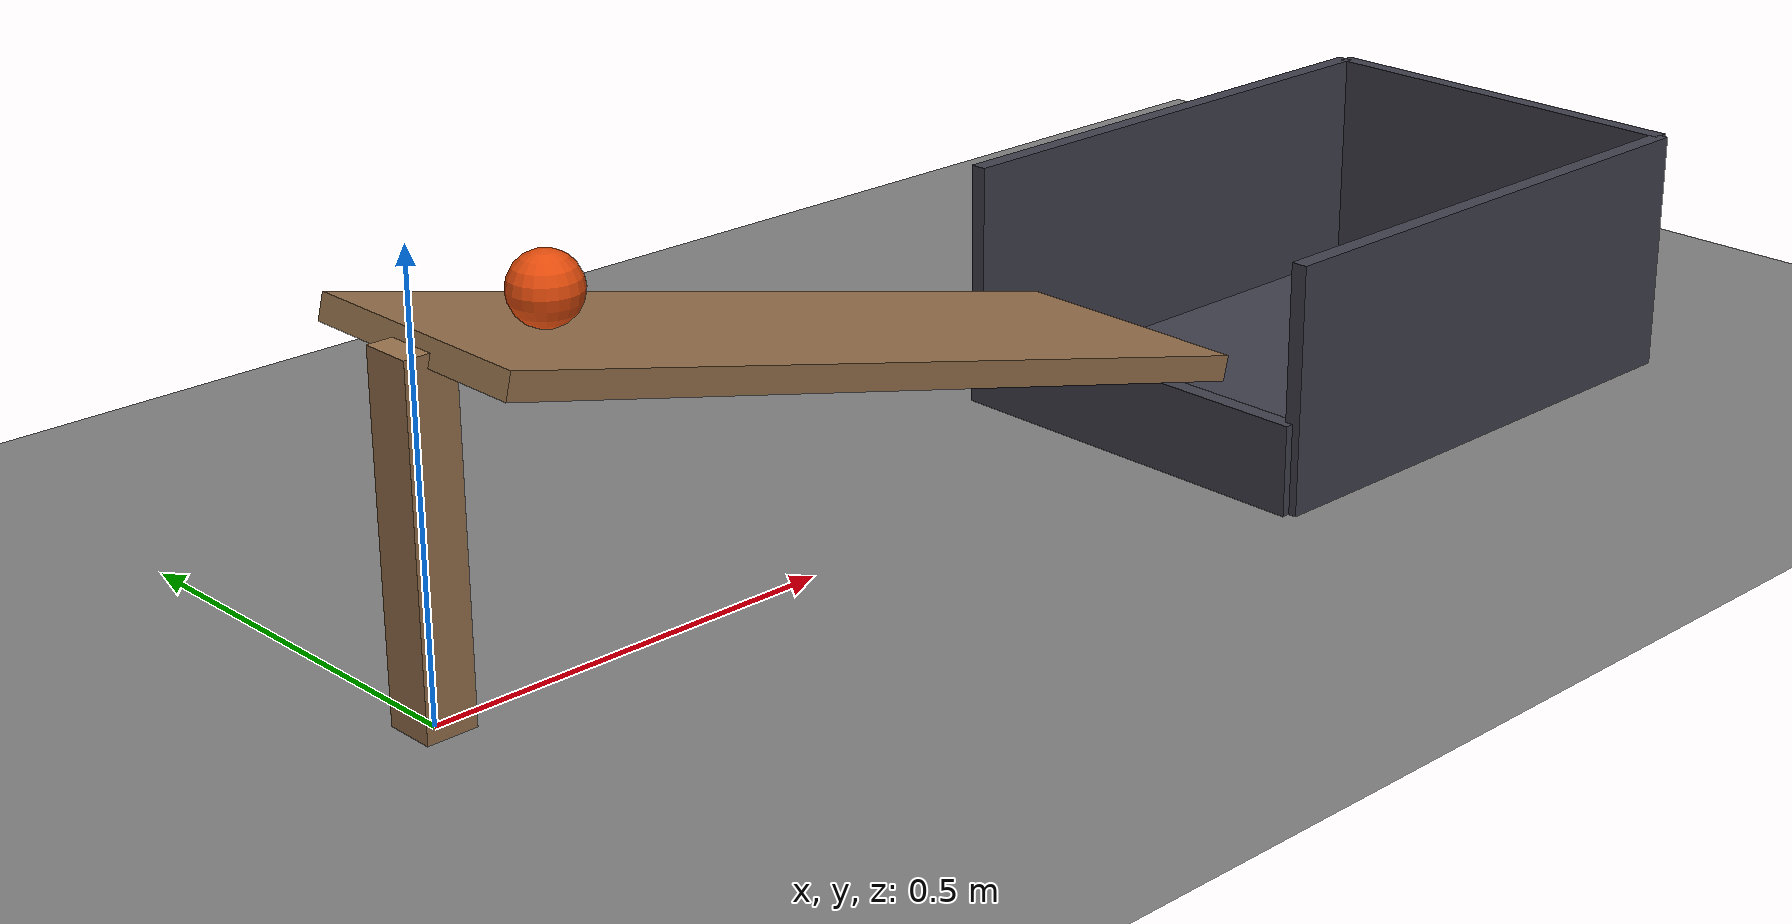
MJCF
<mujoco model="ball_rolls_down_into_a_cup">
  <compiler angle="radian"/>
  <option timestep="0.002"/>
  <worldbody>
    <geom name="floor" type="plane" size="4 4 0.1" friction="0.8 0.005 0.004"/>
    <body name="ramp">
      <geom name="ramp_deck" type="box" pos="0.5 0 0.275" size="0.515388 0.15 0.015" euler="0 0.244979 0" friction="0.8 0.005 0.002" solref="0.01 1" rgba="0.6 0.45 0.3 1"/>
      <geom name="ramp_leg" type="box" pos="0 0 0.2" size="0.03 0.03 0.2" friction="0.8 0.005 0.002" solref="0.01 1" rgba="0.6 0.45 0.3 1"/>
    </body>
    <body name="cup">
      <geom name="cup_base" type="box" pos="1.35 0 0.01" size="0.35 0.25 0.01" friction="0.9 0.02 0.012" solref="0.01 1" rgba="0.25 0.25 0.3 1"/>
      <geom name="cup_near_wall" type="box" pos="1 0 0.055" size="0.01 0.25 0.055" friction="0.9 0.02 0.012" solref="0.01 1" rgba="0.25 0.25 0.3 1"/>
      <geom name="cup_far_wall" type="box" pos="1.7 0 0.15" size="0.01 0.25 0.15" friction="0.9 0.02 0.012" solref="0.01 1" rgba="0.25 0.25 0.3 1"/>
      <geom name="cup_left_wall" type="box" pos="1.35 0.25 0.15" size="0.35 0.01 0.15" friction="0.9 0.02 0.012" solref="0.01 1" rgba="0.25 0.25 0.3 1"/>
      <geom name="cup_right_wall" type="box" pos="1.35 -0.25 0.15" size="0.35 0.01 0.15" friction="0.9 0.02 0.012" solref="0.01 1" rgba="0.25 0.25 0.3 1"/>
    </body>
    <body name="ball" pos="0.158861 0 0.416977">
      <freejoint/>
      <geom name="ball" type="sphere" pos="0 0 0" size="0.04" mass="0.15" condim="6" friction="0.8 0.01 0.004" solref="0.01 1" rgba="0.9 0.3 0.05 1"/>
    </body>
  </worldbody>
  <keyframe>
    <key name="start" qpos="0.158861 0 0.416977 1 0 0 0" qvel="0 0 0 0 0 0"/>
  </keyframe>
</mujoco>
